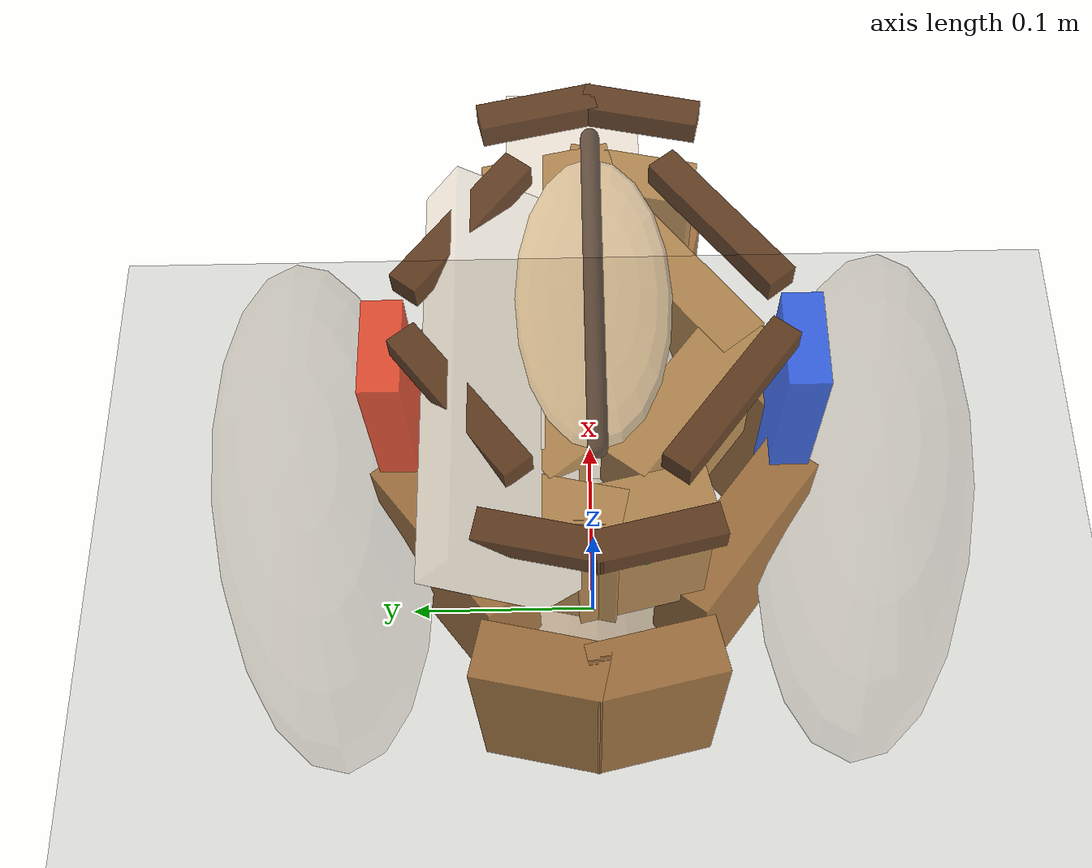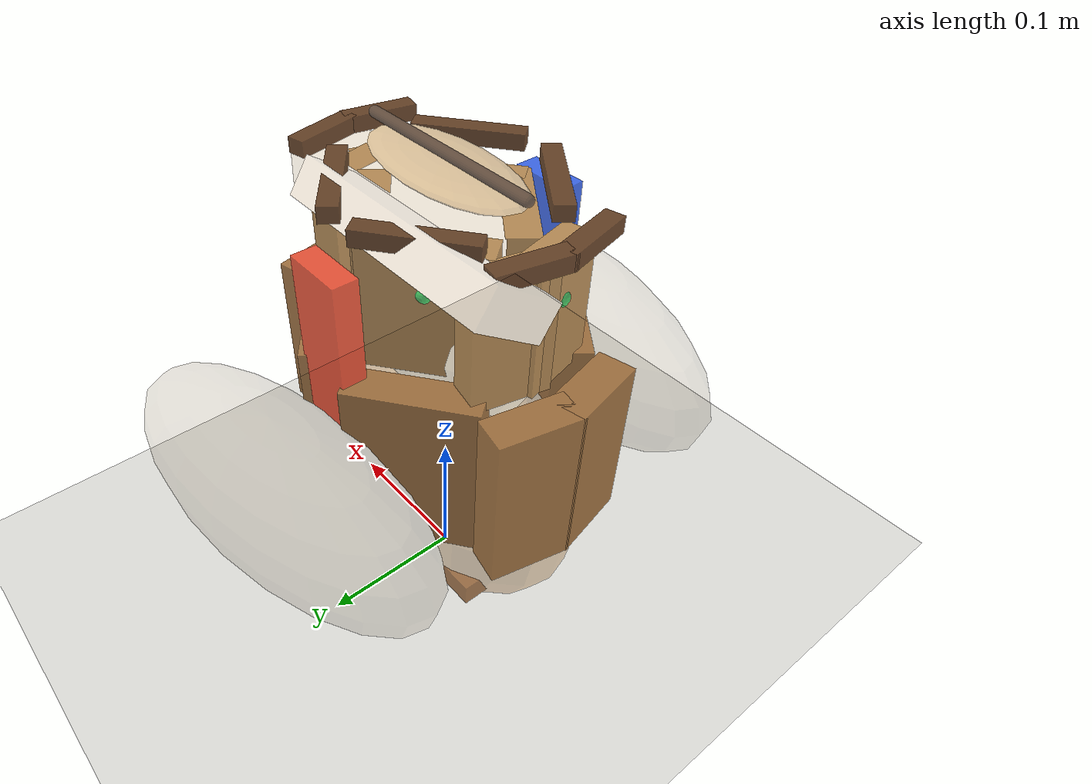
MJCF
<mujoco model="sealed_articulated_sack_v2_underfilled">
  <compiler angle="degree" autolimits="true" />
  <option timestep="0.001000" gravity="0 0 -9.81" integrator="implicitfast" solver="Newton" iterations="100" ls_iterations="24" cone="elliptic" jacobian="sparse" impratio="4" />
  <size nconmax="900" njmax="1800" />
  <visual>
    <global offwidth="1280" offheight="820" />
  </visual>
  <worldbody>
    <geom friction="1.5 0.05 0.005" condim="4" solref="0.026 1" solimp="0.82 0.96 0.001" name="floor" type="plane" pos="0 0 0" size="2.0 2.0 0.05" rgba="0.90 0.90 0.88 1" />
    <light name="key_light" pos="0.4 -0.7 1.5" dir="-0.3 0.4 -1" />
    <camera name="overview" pos="0.86 -0.86 0.72" xyaxes="0.72 0.69 0 -0.34 0.35 0.87" />
    <camera name="front" pos="0.78 0 0.36" xyaxes="0 1 0 -0.25 0 0.97" />
    <camera name="side" pos="0 -0.78 0.36" xyaxes="1 0 0 0 0.25 0.97" />
    <body name="gripper_left_mocap" mocap="true" pos="0 -0.080000 0.230">
      <geom friction="2.2 0.10 0.008" condim="4" solref="0.030 1" solimp="0.78 0.94 0.001" name="gripper_left_mocap_pad" type="box" size="0.020 0.008 0.055" rgba="0.15 0.35 0.95 0.85" />
      <site name="gripper_left_mocap_site" pos="0 0 0" size="0.006" rgba="0.15 0.35 0.95 0.85" />
    </body>
    <body name="gripper_right_mocap" mocap="true" pos="0 0.080000 0.230">
      <geom friction="2.2 0.10 0.008" condim="4" solref="0.030 1" solimp="0.78 0.94 0.001" name="gripper_right_mocap_pad" type="box" size="0.020 0.008 0.055" rgba="0.95 0.25 0.12 0.85" />
      <site name="gripper_right_mocap_site" pos="0 0 0" size="0.006" rgba="0.95 0.25 0.12 0.85" />
    </body>
    <body name="gripper_center_mocap" mocap="true" pos="0 0 0.230">
      <site name="gripper_center_site" pos="0 0 0" size="0.006" rgba="1 1 0 0.8" />
    </body>
    <body name="neighbor_left" pos="0 0.125000 0.145" euler="0 0 8.000">
      <geom friction="1.8 0.12 0.01" condim="4" solref="0.026 1" solimp="0.82 0.96 0.001" name="neighbor_left_geom" type="ellipsoid" size="0.128 0.050 0.060" mass="0.65" rgba="0.50 0.42 0.30 0.05" contype="0" conaffinity="0" />
    </body>
    <body name="neighbor_right" pos="0 -0.125000 0.145" euler="0 0 -8.000">
      <geom friction="1.8 0.12 0.01" condim="4" solref="0.026 1" solimp="0.82 0.96 0.001" name="neighbor_right_geom" type="ellipsoid" size="0.128 0.050 0.060" mass="0.65" rgba="0.50 0.42 0.30 0.05" contype="0" conaffinity="0" />
    </body>
    <body name="bag_frame" pos="0 0 0.188" euler="0 0.000000 0">
      <freejoint name="bag_frame_freejoint" />
      <site name="bag_frame_origin" pos="0 0 0" size="0.007" rgba="1 0 0 0.7" />
      <body name="seam_band_00" pos="0.089623 0.019799 0.118000" euler="0 0 102.457354">
        <geom friction="1.25 0.08 0.006" condim="4" solref="0.026 1" solimp="0.82 0.96 0.001" name="seam_band_00_geom" type="box" size="0.022562 0.006000 0.005000" mass="0.016" rgba="0.36 0.20 0.08 0.88" />
        <site name="grasp_seam_00" pos="0 0 0" size="0.005" rgba="1 0.55 0.12 0.75" />
        <site name="grasp_rim_00" pos="0 0 0" size="0.003" rgba="1 0.55 0.12 0.18" />
      </body>
      <body name="seam_band_01" pos="0.037123 0.047799 0.118000" euler="0 0 142.165284">
        <geom friction="1.25 0.08 0.006" condim="4" solref="0.026 1" solimp="0.82 0.96 0.001" name="seam_band_01_geom" type="box" size="0.034216 0.006000 0.005000" mass="0.016" rgba="0.36 0.20 0.08 0.88" />
        <site name="grasp_seam_01" pos="0 0 0" size="0.005" rgba="1 0.55 0.12 0.75" />
        <site name="grasp_rim_01" pos="0 0 0" size="0.003" rgba="1 0.55 0.12 0.18" />
      </body>
      <body name="seam_band_02" pos="-0.037123 0.047799 0.118000" euler="0 0 217.834716">
        <geom friction="1.25 0.08 0.006" condim="4" solref="0.026 1" solimp="0.82 0.96 0.001" name="seam_band_02_geom" type="box" size="0.034216 0.006000 0.005000" mass="0.016" rgba="0.36 0.20 0.08 0.88" />
        <site name="grasp_seam_02" pos="0 0 0" size="0.005" rgba="1 0.55 0.12 0.75" />
        <site name="grasp_rim_02" pos="0 0 0" size="0.003" rgba="1 0.55 0.12 0.18" />
      </body>
      <body name="seam_band_03" pos="-0.089623 0.019799 0.118000" euler="0 0 257.542646">
        <geom friction="1.25 0.08 0.006" condim="4" solref="0.026 1" solimp="0.82 0.96 0.001" name="seam_band_03_geom" type="box" size="0.022562 0.006000 0.005000" mass="0.016" rgba="0.36 0.20 0.08 0.88" />
        <site name="grasp_seam_03" pos="0 0 0" size="0.005" rgba="1 0.55 0.12 0.75" />
        <site name="grasp_rim_03" pos="0 0 0" size="0.003" rgba="1 0.55 0.12 0.18" />
      </body>
      <body name="seam_band_04" pos="-0.089623 -0.019799 0.118000" euler="0 0 -77.542646">
        <geom friction="1.25 0.08 0.006" condim="4" solref="0.026 1" solimp="0.82 0.96 0.001" name="seam_band_04_geom" type="box" size="0.022562 0.006000 0.005000" mass="0.016" rgba="0.36 0.20 0.08 0.88" />
        <site name="grasp_seam_04" pos="0 0 0" size="0.005" rgba="1 0.55 0.12 0.75" />
        <site name="grasp_rim_04" pos="0 0 0" size="0.003" rgba="1 0.55 0.12 0.18" />
      </body>
      <body name="seam_band_05" pos="-0.037123 -0.047799 0.118000" euler="0 0 -37.834716">
        <geom friction="1.25 0.08 0.006" condim="4" solref="0.026 1" solimp="0.82 0.96 0.001" name="seam_band_05_geom" type="box" size="0.034216 0.006000 0.005000" mass="0.016" rgba="0.36 0.20 0.08 0.88" />
        <site name="grasp_seam_05" pos="0 0 0" size="0.005" rgba="1 0.55 0.12 0.75" />
        <site name="grasp_rim_05" pos="0 0 0" size="0.003" rgba="1 0.55 0.12 0.18" />
      </body>
      <body name="seam_band_06" pos="0.037123 -0.047799 0.118000" euler="0 0 37.834716">
        <geom friction="1.25 0.08 0.006" condim="4" solref="0.026 1" solimp="0.82 0.96 0.001" name="seam_band_06_geom" type="box" size="0.034216 0.006000 0.005000" mass="0.016" rgba="0.36 0.20 0.08 0.88" />
        <site name="grasp_seam_06" pos="0 0 0" size="0.005" rgba="1 0.55 0.12 0.75" />
        <site name="grasp_rim_06" pos="0 0 0" size="0.003" rgba="1 0.55 0.12 0.18" />
      </body>
      <body name="seam_band_07" pos="0.089623 -0.019799 0.118000" euler="0 0 77.542646">
        <geom friction="1.25 0.08 0.006" condim="4" solref="0.026 1" solimp="0.82 0.96 0.001" name="seam_band_07_geom" type="box" size="0.022562 0.006000 0.005000" mass="0.016" rgba="0.36 0.20 0.08 0.88" />
        <site name="grasp_seam_07" pos="0 0 0" size="0.005" rgba="1 0.55 0.12 0.75" />
        <site name="grasp_rim_07" pos="0 0 0" size="0.003" rgba="1 0.55 0.12 0.18" />
      </body>
      <body name="shoulder_panel_00" pos="0.089623 0.019799 0.106000" euler="0 0 102.457354">
        <joint name="shoulder_panel_00_hinge" type="hinge" axis="1 0 0" limited="true" range="-38 48" damping="9.0" stiffness="2.6" />
        <geom friction="1.25 0.08 0.006" condim="4" solref="0.026 1" solimp="0.82 0.96 0.001" name="shoulder_panel_00_geom" type="box" pos="0 0.020000 -0.041000" size="0.025069 0.010000 0.041000" mass="0.028" rgba="0.72 0.52 0.27 0.86" />
        <site name="grasp_shoulder_00" pos="0 0.014000 -0.028700" size="0.006" rgba="0.10 0.75 0.25 0.80" />
      </body>
      <body name="shoulder_panel_01" pos="0.037123 0.047799 0.106000" euler="0 0 142.165284">
        <joint name="shoulder_panel_01_hinge" type="hinge" axis="1 0 0" limited="true" range="-38 48" damping="9.0" stiffness="2.6" />
        <geom friction="1.25 0.08 0.006" condim="4" solref="0.026 1" solimp="0.82 0.96 0.001" name="shoulder_panel_01_geom" type="box" pos="0 0.020000 -0.041000" size="0.038018 0.010000 0.041000" mass="0.028" rgba="0.72 0.52 0.27 0.86" />
        <site name="grasp_shoulder_01" pos="0 0.014000 -0.028700" size="0.006" rgba="0.10 0.75 0.25 0.80" />
      </body>
      <body name="shoulder_panel_02" pos="-0.037123 0.047799 0.106000" euler="0 0 217.834716">
        <joint name="shoulder_panel_02_hinge" type="hinge" axis="1 0 0" limited="true" range="-38 48" damping="9.0" stiffness="2.6" />
        <geom friction="1.25 0.08 0.006" condim="4" solref="0.026 1" solimp="0.82 0.96 0.001" name="shoulder_panel_02_geom" type="box" pos="0 0.020000 -0.041000" size="0.038018 0.010000 0.041000" mass="0.028" rgba="0.72 0.52 0.27 0.86" />
        <site name="grasp_shoulder_02" pos="0 0.014000 -0.028700" size="0.006" rgba="0.10 0.75 0.25 0.80" />
      </body>
      <body name="shoulder_panel_03" pos="-0.089623 0.019799 0.106000" euler="0 0 257.542646">
        <joint name="shoulder_panel_03_hinge" type="hinge" axis="1 0 0" limited="true" range="-38 48" damping="9.0" stiffness="2.6" />
        <geom friction="1.25 0.08 0.006" condim="4" solref="0.026 1" solimp="0.82 0.96 0.001" name="shoulder_panel_03_geom" type="box" pos="0 0.020000 -0.041000" size="0.025069 0.010000 0.041000" mass="0.028" rgba="0.72 0.52 0.27 0.86" />
        <site name="grasp_shoulder_03" pos="0 0.014000 -0.028700" size="0.006" rgba="0.10 0.75 0.25 0.80" />
      </body>
      <body name="shoulder_panel_04" pos="-0.089623 -0.019799 0.106000" euler="0 0 -77.542646">
        <joint name="shoulder_panel_04_hinge" type="hinge" axis="1 0 0" limited="true" range="-38 48" damping="9.0" stiffness="2.6" />
        <geom friction="1.25 0.08 0.006" condim="4" solref="0.026 1" solimp="0.82 0.96 0.001" name="shoulder_panel_04_geom" type="box" pos="0 0.020000 -0.041000" size="0.025069 0.010000 0.041000" mass="0.028" rgba="0.72 0.52 0.27 0.86" />
        <site name="grasp_shoulder_04" pos="0 0.014000 -0.028700" size="0.006" rgba="0.10 0.75 0.25 0.80" />
      </body>
      <body name="shoulder_panel_05" pos="-0.037123 -0.047799 0.106000" euler="0 0 -37.834716">
        <joint name="shoulder_panel_05_hinge" type="hinge" axis="1 0 0" limited="true" range="-38 48" damping="9.0" stiffness="2.6" />
        <geom friction="1.25 0.08 0.006" condim="4" solref="0.026 1" solimp="0.82 0.96 0.001" name="shoulder_panel_05_geom" type="box" pos="0 0.020000 -0.041000" size="0.038018 0.010000 0.041000" mass="0.028" rgba="0.72 0.52 0.27 0.86" />
        <site name="grasp_shoulder_05" pos="0 0.014000 -0.028700" size="0.006" rgba="0.10 0.75 0.25 0.80" />
      </body>
      <body name="shoulder_panel_06" pos="0.037123 -0.047799 0.106000" euler="0 0 37.834716">
        <joint name="shoulder_panel_06_hinge" type="hinge" axis="1 0 0" limited="true" range="-38 48" damping="9.0" stiffness="2.6" />
        <geom friction="1.25 0.08 0.006" condim="4" solref="0.026 1" solimp="0.82 0.96 0.001" name="shoulder_panel_06_geom" type="box" pos="0 0.020000 -0.041000" size="0.038018 0.010000 0.041000" mass="0.028" rgba="0.72 0.52 0.27 0.86" />
        <site name="grasp_shoulder_06" pos="0 0.014000 -0.028700" size="0.006" rgba="0.10 0.75 0.25 0.80" />
      </body>
      <body name="shoulder_panel_07" pos="0.089623 -0.019799 0.106000" euler="0 0 77.542646">
        <joint name="shoulder_panel_07_hinge" type="hinge" axis="1 0 0" limited="true" range="-38 48" damping="9.0" stiffness="2.6" />
        <geom friction="1.25 0.08 0.006" condim="4" solref="0.026 1" solimp="0.82 0.96 0.001" name="shoulder_panel_07_geom" type="box" pos="0 0.020000 -0.041000" size="0.025069 0.010000 0.041000" mass="0.028" rgba="0.72 0.52 0.27 0.86" />
        <site name="grasp_shoulder_07" pos="0 0.014000 -0.028700" size="0.006" rgba="0.10 0.75 0.25 0.80" />
      </body>
      <body name="belly_panel_00" pos="0.089623 0.019799 0.030500" euler="0 0 102.457354">
        <joint name="belly_panel_00_hinge" type="hinge" axis="1 0 0" limited="true" range="-46 58" damping="10.5" stiffness="1.8" />
        <geom friction="1.25 0.08 0.006" condim="4" solref="0.026 1" solimp="0.82 0.96 0.001" name="belly_panel_00_geom" type="box" pos="0 -0.013000 -0.056000" size="0.026573 0.012000 0.056000" mass="0.034" rgba="0.64 0.43 0.21 0.88" />
      </body>
      <body name="belly_panel_01" pos="0.037123 0.047799 0.030500" euler="0 0 142.165284">
        <joint name="belly_panel_01_hinge" type="hinge" axis="1 0 0" limited="true" range="-46 58" damping="10.5" stiffness="1.8" />
        <geom friction="1.25 0.08 0.006" condim="4" solref="0.026 1" solimp="0.82 0.96 0.001" name="belly_panel_01_geom" type="box" pos="0 -0.013000 -0.056000" size="0.040299 0.012000 0.056000" mass="0.034" rgba="0.64 0.43 0.21 0.88" />
      </body>
      <body name="belly_panel_02" pos="-0.037123 0.047799 0.030500" euler="0 0 217.834716">
        <joint name="belly_panel_02_hinge" type="hinge" axis="1 0 0" limited="true" range="-46 58" damping="10.5" stiffness="1.8" />
        <geom friction="1.25 0.08 0.006" condim="4" solref="0.026 1" solimp="0.82 0.96 0.001" name="belly_panel_02_geom" type="box" pos="0 -0.013000 -0.056000" size="0.040299 0.012000 0.056000" mass="0.034" rgba="0.64 0.43 0.21 0.88" />
      </body>
      <body name="belly_panel_03" pos="-0.089623 0.019799 0.030500" euler="0 0 257.542646">
        <joint name="belly_panel_03_hinge" type="hinge" axis="1 0 0" limited="true" range="-46 58" damping="10.5" stiffness="1.8" />
        <geom friction="1.25 0.08 0.006" condim="4" solref="0.026 1" solimp="0.82 0.96 0.001" name="belly_panel_03_geom" type="box" pos="0 -0.013000 -0.056000" size="0.026573 0.012000 0.056000" mass="0.034" rgba="0.64 0.43 0.21 0.88" />
      </body>
      <body name="belly_panel_04" pos="-0.089623 -0.019799 0.030500" euler="0 0 -77.542646">
        <joint name="belly_panel_04_hinge" type="hinge" axis="1 0 0" limited="true" range="-46 58" damping="10.5" stiffness="1.8" />
        <geom friction="1.25 0.08 0.006" condim="4" solref="0.026 1" solimp="0.82 0.96 0.001" name="belly_panel_04_geom" type="box" pos="0 -0.013000 -0.056000" size="0.026573 0.012000 0.056000" mass="0.034" rgba="0.64 0.43 0.21 0.88" />
      </body>
      <body name="belly_panel_05" pos="-0.037123 -0.047799 0.030500" euler="0 0 -37.834716">
        <joint name="belly_panel_05_hinge" type="hinge" axis="1 0 0" limited="true" range="-46 58" damping="10.5" stiffness="1.8" />
        <geom friction="1.25 0.08 0.006" condim="4" solref="0.026 1" solimp="0.82 0.96 0.001" name="belly_panel_05_geom" type="box" pos="0 -0.013000 -0.056000" size="0.040299 0.012000 0.056000" mass="0.034" rgba="0.64 0.43 0.21 0.88" />
      </body>
      <body name="belly_panel_06" pos="0.037123 -0.047799 0.030500" euler="0 0 37.834716">
        <joint name="belly_panel_06_hinge" type="hinge" axis="1 0 0" limited="true" range="-46 58" damping="10.5" stiffness="1.8" />
        <geom friction="1.25 0.08 0.006" condim="4" solref="0.026 1" solimp="0.82 0.96 0.001" name="belly_panel_06_geom" type="box" pos="0 -0.013000 -0.056000" size="0.040299 0.012000 0.056000" mass="0.034" rgba="0.64 0.43 0.21 0.88" />
      </body>
      <body name="belly_panel_07" pos="0.089623 -0.019799 0.030500" euler="0 0 77.542646">
        <joint name="belly_panel_07_hinge" type="hinge" axis="1 0 0" limited="true" range="-46 58" damping="10.5" stiffness="1.8" />
        <geom friction="1.25 0.08 0.006" condim="4" solref="0.026 1" solimp="0.82 0.96 0.001" name="belly_panel_07_geom" type="box" pos="0 -0.013000 -0.056000" size="0.026573 0.012000 0.056000" mass="0.034" rgba="0.64 0.43 0.21 0.88" />
      </body>
      <body name="bottom_sling" pos="0 0 -0.130100">
        <geom friction="1.25 0.08 0.006" condim="4" solref="0.026 1" solimp="0.82 0.96 0.001" name="bottom_sling_pad" type="box" size="0.082 0.048 0.008" mass="0.065" rgba="0.58 0.35 0.15 0.78" />
        <geom friction="1.25 0.08 0.006" condim="4" solref="0.026 1" solimp="0.82 0.96 0.001" name="bottom_sling_cross" type="box" euler="0 0 34" size="0.072 0.010 0.010" mass="0.022" rgba="0.46 0.26 0.10 0.74" />
        <site name="bottom_cradle_site" pos="0 0 0" size="0.004" rgba="0.8 0.4 0.1 0.7" />
      </body>
      <body name="fold_root_flap_1" pos="-0.020000 0.030000 0.130000" euler="-56.000000 0 0">
        <joint name="fold_root_flap_1_hinge" type="hinge" axis="1 0 0" limited="true" range="-125 22" damping="7.5" stiffness="2.8" />
        <geom friction="1.25 0.08 0.006" condim="4" solref="0.026 1" solimp="0.82 0.96 0.001" name="fold_root_flap_1_geom" type="box" pos="0 0.026 -0.012" size="0.079305 0.012000 0.026000" mass="0.001" rgba="0.70 0.50 0.27 0.05" contype="0" conaffinity="0" />
        <site name="grasp_fold_1" pos="0 0.026 -0.012" size="0.005" rgba="0.1 0.2 1 0.35" />
        <site name="grasp_fold_root_1" pos="0 0.026 -0.012" size="0.004" rgba="0.1 0.2 1 0.15" />
      </body>
      <body name="fold_root_flap_2" pos="0.030000 0.018000 0.120000" euler="-88.000000 0 0">
        <joint name="fold_root_flap_2_hinge" type="hinge" axis="1 0 0" limited="true" range="-125 22" damping="7.5" stiffness="2.8" />
        <geom friction="1.25 0.08 0.006" condim="4" solref="0.026 1" solimp="0.82 0.96 0.001" name="fold_root_flap_2_geom" type="box" pos="0 0.026 -0.012" size="0.079305 0.012000 0.026000" mass="0.001" rgba="0.70 0.50 0.27 0.05" contype="0" conaffinity="0" />
        <site name="grasp_fold_2" pos="0 0.026 -0.012" size="0.005" rgba="0.1 0.2 1 0.35" />
        <site name="grasp_fold_root_2" pos="0 0.026 -0.012" size="0.004" rgba="0.1 0.2 1 0.15" />
      </body>
      <body name="payload_main" pos="0.000000 0.000000 -0.132000">
        <joint name="payload_main_x" type="slide" axis="1 0 0" limited="true" range="-0.030 0.030" damping="20" stiffness="3.0" />
        <joint name="payload_main_y" type="slide" axis="0 1 0" limited="true" range="-0.026 0.026" damping="20" stiffness="3.0" />
        <joint name="payload_main_z" type="slide" axis="0 0 1" limited="true" range="-0.020 0.020" damping="20" stiffness="3.0" />
        <geom friction="1.25 0.08 0.006" condim="4" solref="0.026 1" solimp="0.82 0.96 0.001" name="payload_main_geom" type="ellipsoid" size="0.070000 0.044000 0.034000" mass="0.3400" rgba="0.42 0.22 0.10 0.72" contype="1" conaffinity="1" />
      </body>
      <body name="payload_aux" pos="0.000000 0.000000 -0.095000">
        <joint name="payload_aux_x" type="slide" axis="1 0 0" limited="true" range="-0.030 0.030" damping="20" stiffness="3.0" />
        <joint name="payload_aux_y" type="slide" axis="0 1 0" limited="true" range="-0.026 0.026" damping="20" stiffness="3.0" />
        <joint name="payload_aux_z" type="slide" axis="0 0 1" limited="true" range="-0.020 0.020" damping="20" stiffness="3.0" />
        <geom friction="1.25 0.08 0.006" condim="4" solref="0.026 1" solimp="0.82 0.96 0.001" name="payload_aux_geom" type="ellipsoid" size="0.038000 0.028000 0.028000" mass="0.1400" rgba="0.60 0.28 0.12 0.05" contype="0" conaffinity="0" />
      </body>
      <body name="visual_upper_hull" pos="0.000000 0.000000 0.030000">
        <geom friction="1.25 0.08 0.006" condim="4" solref="0.026 1" solimp="0.82 0.96 0.001" name="visual_upper_hull_geom" type="ellipsoid" size="0.075600 0.039200 0.068800" rgba="0.78 0.62 0.38 0.30" contype="0" conaffinity="0" mass="0.001" />
      </body>
      <body name="visual_lower_hull" pos="0.000000 0.000000 -0.089400">
        <geom friction="1.25 0.08 0.006" condim="4" solref="0.026 1" solimp="0.82 0.96 0.001" name="visual_lower_hull_geom" type="ellipsoid" size="0.115500 0.060480 0.101980" rgba="0.72 0.50 0.25 0.40" contype="0" conaffinity="0" mass="0.001" />
      </body>
      <body name="visual_lower_fill" pos="0.000000 0.000000 -0.132000">
        <geom friction="1.25 0.08 0.006" condim="4" solref="0.026 1" solimp="0.82 0.96 0.001" name="visual_lower_fill_geom" type="ellipsoid" size="0.080500 0.049280 0.035700" rgba="0.42 0.22 0.10 0.34" contype="0" conaffinity="0" mass="0.001" />
      </body>
      <body name="sealed_top_cap_visual" pos="0 0 0.127000">
        <geom friction="1.25 0.08 0.006" condim="4" solref="0.026 1" solimp="0.82 0.96 0.001" name="sealed_top_cap_visual_geom" type="ellipsoid" size="0.060900 0.028000 0.006000" rgba="0.80 0.62 0.36 0.58" contype="0" conaffinity="0" mass="0.001" />
      </body>
      <body name="sealed_top_stitch_visual" pos="0 0 0.135000">
        <geom friction="1.25 0.08 0.006" condim="4" solref="0.026 1" solimp="0.82 0.96 0.001" name="sealed_top_stitch_visual_geom" type="capsule" fromto="-0.064 0 0 0.064 0 0" size="0.0035" rgba="0.24 0.13 0.05 0.76" contype="0" conaffinity="0" mass="0.001" />
      </body>
    </body>
  </worldbody>
</mujoco>
